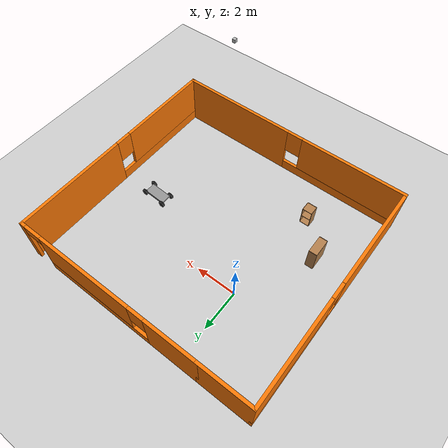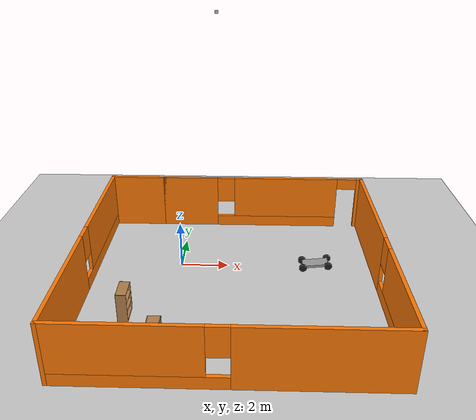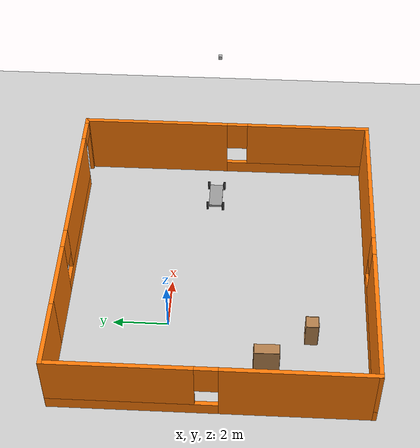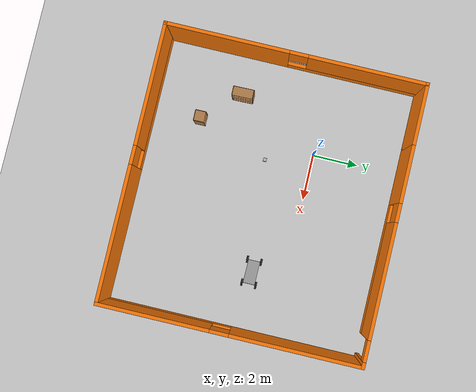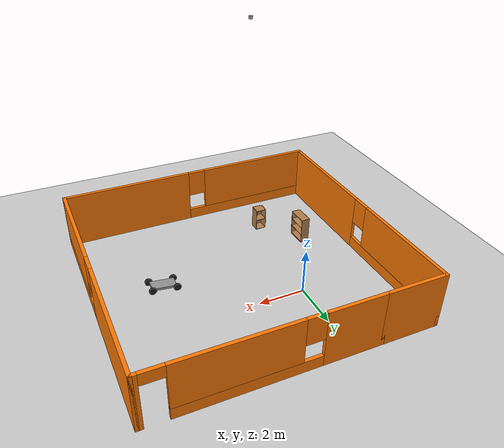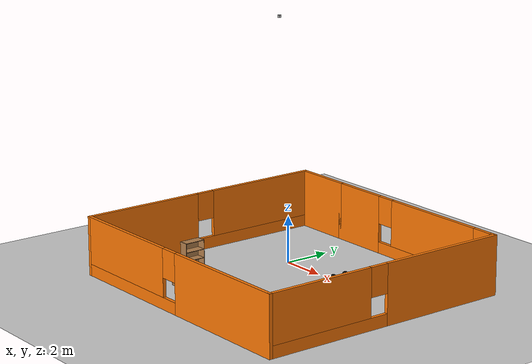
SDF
<sdf version="1.6">
 <world name="default">
  <model name="ground_plane">
   <static>1</static>
   <link name="link">
    <collision name="collision">
     <geometry><plane><normal>0 0 1</normal><size>100 100</size></plane></geometry>
     <surface><friction><ode><mu>100</mu><mu2>50</mu2></ode></friction></surface>
    </collision>
    <visual name="visual">
     <cast_shadows>0</cast_shadows>
     <geometry><plane><normal>0 0 1</normal><size>100 100</size></plane></geometry>
     <material>
      <script><uri>file://media/materials/scripts/gazebo.material</uri><name>Gazebo/Grey</name></script>
     </material>
    </visual>
   </link>
  </model>
  <model name="bookshelf">
   <static>1</static>
   <link name="link">
    <inertial><mass>1</mass></inertial>
    <collision name="back">
     <pose>0 0.005 0.6 0 -0 0</pose>
     <geometry><box><size>0.9 0.01 1.2</size></box></geometry>
    </collision>
    <visual name="visual1">
     <pose>0 0.005 0.6 0 -0 0</pose>
     <geometry><box><size>0.9 0.01 1.2</size></box></geometry>
     <material>
      <script><uri>file://media/materials/scripts/gazebo.material</uri><name>Gazebo/Wood</name></script>
     </material>
    </visual>
    <collision name="left_side">
     <pose>0.45 -0.195 0.6 0 -0 0</pose>
     <geometry><box><size>0.02 0.4 1.2</size></box></geometry>
    </collision>
    <visual name="visual2">
     <pose>0.45 -0.195 0.6 0 -0 0</pose>
     <geometry><box><size>0.02 0.4 1.2</size></box></geometry>
     <material>
      <script><uri>file://media/materials/scripts/gazebo.material</uri><name>Gazebo/Wood</name></script>
     </material>
    </visual>
    <collision name="right_side">
     <pose>-0.45 -0.195 0.6 0 -0 0</pose>
     <geometry><box><size>0.02 0.4 1.2</size></box></geometry>
    </collision>
    <visual name="visual3">
     <pose>-0.45 -0.195 0.6 0 -0 0</pose>
     <geometry><box><size>0.02 0.4 1.2</size></box></geometry>
     <material>
      <script><uri>file://media/materials/scripts/gazebo.material</uri><name>Gazebo/Wood</name></script>
     </material>
    </visual>
    <collision name="bottom">
     <pose>0 -0.195 0.03 0 -0 0</pose>
     <geometry><box><size>0.88 0.4 0.06</size></box></geometry>
    </collision>
    <visual name="visual4">
     <pose>0 -0.195 0.03 0 -0 0</pose>
     <geometry><box><size>0.88 0.4 0.06</size></box></geometry>
     <material>
      <script><uri>file://media/materials/scripts/gazebo.material</uri><name>Gazebo/Wood</name></script>
     </material>
    </visual>
    <collision name="top">
     <pose>0 -0.195 1.19 0 -0 0</pose>
     <geometry><box><size>0.88 0.4 0.02</size></box></geometry>
    </collision>
    <visual name="visual5">
     <pose>0 -0.195 1.19 0 -0 0</pose>
     <geometry><box><size>0.88 0.4 0.02</size></box></geometry>
     <material>
      <script><uri>file://media/materials/scripts/gazebo.material</uri><name>Gazebo/Wood</name></script>
     </material>
    </visual>
    <collision name="low_shelf">
     <pose>0 -0.195 0.43 0 -0 0</pose>
     <geometry><box><size>0.88 0.4 0.02</size></box></geometry>
    </collision>
    <visual name="visual6">
     <pose>0 -0.195 0.43 0 -0 0</pose>
     <geometry><box><size>0.88 0.4 0.02</size></box></geometry>
     <material>
      <script><uri>file://media/materials/scripts/gazebo.material</uri><name>Gazebo/Wood</name></script>
     </material>
    </visual>
    <collision name="high_shelf">
     <pose>0 -0.195 0.8 0 -0 0</pose>
     <geometry><box><size>0.88 0.4 0.02</size></box></geometry>
    </collision>
    <visual name="visual7">
     <pose>0 -0.195 0.8 0 -0 0</pose>
     <geometry><box><size>0.88 0.4 0.02</size></box></geometry>
     <material>
      <script><uri>file://media/materials/scripts/gazebo.material</uri><name>Gazebo/Wood</name></script>
     </material>
    </visual>
   </link>
   <pose>-1.99947 -3.58684 0 0 -0 1.58787</pose>
  </model>
  <model name="cabinet">
   <static>1</static>
   <link name="cabinet_bottom_plate">
    <inertial>
     <pose>0 0 -1 0 -0 0</pose>
     <inertia><ixx>2.05</ixx><ixy>0</ixy><ixz>0</ixz><iyy>2.05</iyy><iyz>0</iyz><izz>2.05</izz></inertia>
     <mass>25</mass>
    </inertial>
    <collision name="cabinet_bottom_plate_geom">
     <pose>0 0 0.01 0 -0 0</pose>
     <geometry><box><size>0.45 0.45 0.02</size></box></geometry>
    </collision>
    <visual name="cabinet_bottom_plate_geom_visual">
     <pose>0 0 0.01 0 -0 0</pose>
     <geometry><box><size>0.45 0.45 0.02</size></box></geometry>
     <material>
      <script><uri>file://media/materials/scripts/gazebo.material</uri><name>Gazebo/Wood</name></script>
     </material>
    </visual>
    <collision name="cabinet_bottom_plate_geom_cabinet_back_plate">
     <pose>0.235 0 0.51 0 -0 0</pose>
     <geometry><box><size>0.02 0.45 1.02</size></box></geometry>
    </collision>
    <visual name="cabinet_bottom_plate_geom_cabinet_back_plate_visual">
     <pose>0.235 0 0.51 0 -0 0</pose>
     <geometry><box><size>0.02 0.45 1.02</size></box></geometry>
     <material>
      <script><uri>file://media/materials/scripts/gazebo.material</uri><name>Gazebo/Wood</name></script>
     </material>
    </visual>
    <collision name="cabinet_bottom_plate_geom_cabinet_left_plate">
     <pose>0 0.235 0.51 0 -0 0</pose>
     <geometry><box><size>0.45 0.02 1.02</size></box></geometry>
    </collision>
    <visual name="cabinet_bottom_plate_geom_cabinet_left_plate_visual">
     <pose>0 0.235 0.51 0 -0 0</pose>
     <geometry><box><size>0.45 0.02 1.02</size></box></geometry>
     <material>
      <script><uri>file://media/materials/scripts/gazebo.material</uri><name>Gazebo/Wood</name></script>
     </material>
    </visual>
    <collision name="cabinet_bottom_plate_geom_cabinet_middle_plate">
     <pose>0 0 0.51 0 -0 0</pose>
     <geometry><box><size>0.45 0.45 0.02</size></box></geometry>
    </collision>
    <visual name="cabinet_bottom_plate_geom_cabinet_middle_plate_visual">
     <pose>0 0 0.51 0 -0 0</pose>
     <geometry><box><size>0.45 0.45 0.02</size></box></geometry>
     <material>
      <script><uri>file://media/materials/scripts/gazebo.material</uri><name>Gazebo/Wood</name></script>
     </material>
    </visual>
    <collision name="cabinet_bottom_plate_geom_cabinet_right_plate">
     <pose>0 -0.235 0.51 0 -0 0</pose>
     <geometry><box><size>0.45 0.02 1.02</size></box></geometry>
    </collision>
    <visual name="cabinet_bottom_plate_geom_cabinet_right_plate_visual">
     <pose>0 -0.235 0.51 0 -0 0</pose>
     <geometry><box><size>0.45 0.02 1.02</size></box></geometry>
     <material>
      <script><uri>file://media/materials/scripts/gazebo.material</uri><name>Gazebo/Wood</name></script>
     </material>
    </visual>
    <collision name="cabinet_bottom_plate_geom_cabinet_top_plate">
     <pose>0 0 1.01 0 -0 0</pose>
     <geometry><box><size>0.45 0.45 0.02</size></box></geometry>
    </collision>
    <visual name="cabinet_bottom_plate_geom_cabinet_top_plate_visual">
     <pose>0 0 1.01 0 -0 0</pose>
     <geometry><box><size>0.45 0.45 0.02</size></box></geometry>
     <material>
      <script><uri>file://media/materials/scripts/gazebo.material</uri><name>Gazebo/Wood</name></script>
     </material>
    </visual>
   </link>
   <pose>-0.418469 -5.16674 0 0 0 -1.56404</pose>
  </model>
  <model name="cart_rigid_suspension">
   <link name="chassis">
    <pose>0 0 0.15 0 -0 0</pose>
    <inertial>
     <pose>0.1 0 0 0 -0 0</pose>
     <mass>10</mass>
     <inertia>
      <ixx>0.216667</ixx>
      <iyy>0.841667</iyy>
      <izz>1.04167</izz>
      <ixy>0</ixy>
      <ixz>0</ixz>
      <iyz>0</iyz>
     </inertia>
    </inertial>
    <collision name="collision"><geometry><box><size>1 0.5 0.1</size></box></geometry></collision>
    <visual name="visual">
     <geometry><box><size>1 0.5 0.1</size></box></geometry>
     <material>
      <script><uri>file://media/materials/scripts/gazebo.material</uri><name>Gazebo/Grey</name></script>
     </material>
    </visual>
   </link>
   <link name="wheel_front_left">
    <pose>0.5 0.298 0.15 -1.5708 0 0</pose>
    <inertial>
     <mass>0.5</mass>
     <inertia>
      <ixx>0.00307917</ixx>
      <iyy>0.00307917</iyy>
      <izz>0.005625</izz>
      <ixy>0</ixy>
      <ixz>0</ixz>
      <iyz>0</iyz>
     </inertia>
    </inertial>
    <collision name="collision">
     <geometry><cylinder><radius>0.15</radius><length>0.08</length></cylinder></geometry>
    </collision>
    <visual name="visual">
     <geometry><cylinder><radius>0.15</radius><length>0.08</length></cylinder></geometry>
     <material>
      <script><uri>file://media/materials/scripts/gazebo.material</uri><name>Gazebo/Black</name></script>
     </material>
    </visual>
   </link>
   <joint name="wheel_front_left_spin" type="revolute">
    <parent>chassis</parent>
    <child>wheel_front_left</child>
    <axis>
     <xyz>0 0 1</xyz>
     <use_parent_model_frame>0</use_parent_model_frame>
     <limit><lower>-1e+16</lower><upper>1e+16</upper></limit>
     <dynamics><spring_reference>0</spring_reference><spring_stiffness>0</spring_stiffness></dynamics>
    </axis>
   </joint>
   <link name="wheel_front_right">
    <pose>0.5 -0.298 0.15 -1.5708 0 0</pose>
    <inertial>
     <mass>0.5</mass>
     <inertia>
      <ixx>0.00307917</ixx>
      <iyy>0.00307917</iyy>
      <izz>0.005625</izz>
      <ixy>0</ixy>
      <ixz>0</ixz>
      <iyz>0</iyz>
     </inertia>
    </inertial>
    <collision name="collision">
     <geometry><cylinder><radius>0.15</radius><length>0.08</length></cylinder></geometry>
    </collision>
    <visual name="visual">
     <geometry><cylinder><radius>0.15</radius><length>0.08</length></cylinder></geometry>
     <material>
      <script><uri>file://media/materials/scripts/gazebo.material</uri><name>Gazebo/Black</name></script>
     </material>
    </visual>
   </link>
   <joint name="wheel_front_right_spin" type="revolute">
    <parent>chassis</parent>
    <child>wheel_front_right</child>
    <axis>
     <xyz>0 0 1</xyz>
     <use_parent_model_frame>0</use_parent_model_frame>
     <limit><lower>-1e+16</lower><upper>1e+16</upper></limit>
     <dynamics><spring_reference>0</spring_reference><spring_stiffness>0</spring_stiffness></dynamics>
    </axis>
   </joint>
   <link name="wheel_rear_left">
    <pose>-0.5 0.298 0.15 -1.5708 0 0</pose>
    <inertial>
     <mass>0.5</mass>
     <inertia>
      <ixx>0.00307917</ixx>
      <iyy>0.00307917</iyy>
      <izz>0.005625</izz>
      <ixy>0</ixy>
      <ixz>0</ixz>
      <iyz>0</iyz>
     </inertia>
    </inertial>
    <collision name="collision">
     <geometry><cylinder><radius>0.15</radius><length>0.08</length></cylinder></geometry>
    </collision>
    <visual name="visual">
     <geometry><cylinder><radius>0.15</radius><length>0.08</length></cylinder></geometry>
     <material>
      <script><uri>file://media/materials/scripts/gazebo.material</uri><name>Gazebo/Black</name></script>
     </material>
    </visual>
   </link>
   <joint name="wheel_rear_left_spin" type="revolute">
    <parent>chassis</parent>
    <child>wheel_rear_left</child>
    <axis>
     <xyz>0 0 1</xyz>
     <use_parent_model_frame>0</use_parent_model_frame>
     <limit><lower>-1e+16</lower><upper>1e+16</upper></limit>
     <dynamics><spring_reference>0</spring_reference><spring_stiffness>0</spring_stiffness></dynamics>
    </axis>
   </joint>
   <link name="wheel_rear_right">
    <pose>-0.5 -0.298 0.15 -1.5708 0 0</pose>
    <inertial>
     <mass>0.5</mass>
     <inertia>
      <ixx>0.00307917</ixx>
      <iyy>0.00307917</iyy>
      <izz>0.005625</izz>
      <ixy>0</ixy>
      <ixz>0</ixz>
      <iyz>0</iyz>
     </inertia>
    </inertial>
    <collision name="collision">
     <geometry><cylinder><radius>0.15</radius><length>0.08</length></cylinder></geometry>
    </collision>
    <visual name="visual">
     <geometry><cylinder><radius>0.15</radius><length>0.08</length></cylinder></geometry>
     <material>
      <script><uri>file://media/materials/scripts/gazebo.material</uri><name>Gazebo/Black</name></script>
     </material>
    </visual>
   </link>
   <joint name="wheel_rear_right_spin" type="revolute">
    <parent>chassis</parent>
    <child>wheel_rear_right</child>
    <axis>
     <xyz>0 0 1</xyz>
     <use_parent_model_frame>0</use_parent_model_frame>
     <limit><lower>-1e+16</lower><upper>1e+16</upper></limit>
     <dynamics><spring_reference>0</spring_reference><spring_stiffness>0</spring_stiffness></dynamics>
    </axis>
   </joint>
   <pose>5.58422 -1.45246 0.954144 -3.9e-05 -0.107772 -0.006007</pose>
  </model>
  <model name="lidarwall">
   <pose>2.26726 -1.73259 0 0 -0 0</pose>
   <link name="Wall_10">
    <collision name="Wall_10_Collision">
     <geometry><box><size>2.65 0.15 2.5</size></box></geometry>
     <pose>0 0 1.25 0 -0 0</pose>
    </collision>
    <visual name="Wall_10_Visual">
     <pose>0 0 1.25 0 -0 0</pose>
     <geometry><box><size>2.65 0.15 2.5</size></box></geometry>
     <material>
      <script><uri>file://media/materials/scripts/gazebo.material</uri><name>Gazebo/Grey</name></script>
      <ambient>0.996078 0.47451 0.0196078 1</ambient>
     </material>
    </visual>
    <pose>-4.675 5.55 0 0 -0 0</pose>
   </link>
   <link name="Wall_6">
    <pose>1.25 5.55 0 0 -0 0</pose>
    <visual name="Wall_6_Visual_0">
     <pose>-3.44551 0 1.25 0 -0 0</pose>
     <geometry><box><size>2.60897 0.15 2.5</size></box></geometry>
     <material>
      <script><uri>file://media/materials/scripts/gazebo.material</uri><name>Gazebo/Grey</name></script>
      <ambient>0.996078 0.47451 0.0196078 1</ambient>
     </material>
    </visual>
    <collision name="Wall_6_Collision_0">
     <geometry><box><size>2.60897 0.15 2.5</size></box></geometry>
     <pose>-3.44551 0 1.25 0 -0 0</pose>
    </collision>
    <visual name="Wall_6_Visual_1">
     <pose>4.60231 0 1.25 0 -0 0</pose>
     <geometry><box><size>0.295388 0.15 2.5</size></box></geometry>
     <material>
      <script><uri>file://media/materials/scripts/gazebo.material</uri><name>Gazebo/Grey</name></script>
      <ambient>0.996078 0.47451 0.0196078 1</ambient>
     </material>
    </visual>
    <collision name="Wall_6_Collision_1">
     <geometry><box><size>0.295388 0.15 2.5</size></box></geometry>
     <pose>4.60231 0 1.25 0 -0 0</pose>
    </collision>
    <visual name="Wall_6_Visual_2">
     <pose>0.706791 0 0.25 0 -0 0</pose>
     <geometry><box><size>5.69564 0.15 0.5</size></box></geometry>
     <material>
      <script><uri>file://media/materials/scripts/gazebo.material</uri><name>Gazebo/Grey</name></script>
      <ambient>0.996078 0.47451 0.0196078 1</ambient>
     </material>
    </visual>
    <collision name="Wall_6_Collision_2">
     <geometry><box><size>5.69564 0.15 0.5</size></box></geometry>
     <pose>0.706791 0 0.25 0 -0 0</pose>
    </collision>
    <visual name="Wall_6_Visual_3">
     <pose>1.10679 0 1.5 0 -0 0</pose>
     <geometry><box><size>4.89564 0.15 2</size></box></geometry>
     <material>
      <script><uri>file://media/materials/scripts/gazebo.material</uri><name>Gazebo/Grey</name></script>
      <ambient>0.996078 0.47451 0.0196078 1</ambient>
     </material>
    </visual>
    <collision name="Wall_6_Collision_3">
     <geometry><box><size>4.89564 0.15 2</size></box></geometry>
     <pose>1.10679 0 1.5 0 -0 0</pose>
    </collision>
    <visual name="Wall_6_Visual_4">
     <pose>-1.74103 0 1.9 0 -0 0</pose>
     <geometry><box><size>0.8 0.15 1.2</size></box></geometry>
     <material>
      <script><uri>file://media/materials/scripts/gazebo.material</uri><name>Gazebo/Grey</name></script>
      <ambient>0.996078 0.47451 0.0196078 1</ambient>
     </material>
    </visual>
    <collision name="Wall_6_Collision_4">
     <geometry><box><size>0.8 0.15 1.2</size></box></geometry>
     <pose>-1.74103 0 1.9 0 -0 0</pose>
    </collision>
    <visual name="Wall_6_Visual_5">
     <pose>4.00461 0 2.25 0 -0 0</pose>
     <geometry><box><size>0.9 0.15 0.5</size></box></geometry>
     <material>
      <script><uri>file://media/materials/scripts/gazebo.material</uri><name>Gazebo/Grey</name></script>
      <ambient>0.996078 0.47451 0.0196078 1</ambient>
     </material>
    </visual>
    <collision name="Wall_6_Collision_5">
     <geometry><box><size>0.9 0.15 0.5</size></box></geometry>
     <pose>4.00461 0 2.25 0 -0 0</pose>
    </collision>
   </link>
   <link name="Wall_7">
    <pose>5.925 0 0 0 0 -1.5708</pose>
    <visual name="Wall_7_Visual_0">
     <pose>-2.79573 0 1.25 0 -0 0</pose>
     <geometry><box><size>5.65854 0.15 2.5</size></box></geometry>
     <material>
      <script><uri>file://media/materials/scripts/gazebo.material</uri><name>Gazebo/Grey</name></script>
      <ambient>0.996078 0.47451 0.0196078 1</ambient>
     </material>
    </visual>
    <collision name="Wall_7_Collision_0">
     <geometry><box><size>5.65854 0.15 2.5</size></box></geometry>
     <pose>-2.79573 0 1.25 0 -0 0</pose>
    </collision>
    <visual name="Wall_7_Visual_1">
     <pose>2.82927 0 0.25 0 -0 0</pose>
     <geometry><box><size>5.59146 0.15 0.5</size></box></geometry>
     <material>
      <script><uri>file://media/materials/scripts/gazebo.material</uri><name>Gazebo/Grey</name></script>
      <ambient>0.996078 0.47451 0.0196078 1</ambient>
     </material>
    </visual>
    <collision name="Wall_7_Collision_1">
     <geometry><box><size>5.59146 0.15 0.5</size></box></geometry>
     <pose>2.82927 0 0.25 0 -0 0</pose>
    </collision>
    <visual name="Wall_7_Visual_2">
     <pose>3.22927 0 1.5 0 -0 0</pose>
     <geometry><box><size>4.79146 0.15 2</size></box></geometry>
     <material>
      <script><uri>file://media/materials/scripts/gazebo.material</uri><name>Gazebo/Grey</name></script>
      <ambient>0.996078 0.47451 0.0196078 1</ambient>
     </material>
    </visual>
    <collision name="Wall_7_Collision_2">
     <geometry><box><size>4.79146 0.15 2</size></box></geometry>
     <pose>3.22927 0 1.5 0 -0 0</pose>
    </collision>
    <visual name="Wall_7_Visual_3">
     <pose>0.433542 0 1.9 0 -0 0</pose>
     <geometry><box><size>0.8 0.15 1.2</size></box></geometry>
     <material>
      <script><uri>file://media/materials/scripts/gazebo.material</uri><name>Gazebo/Grey</name></script>
      <ambient>0.996078 0.47451 0.0196078 1</ambient>
     </material>
    </visual>
    <collision name="Wall_7_Collision_3">
     <geometry><box><size>0.8 0.15 1.2</size></box></geometry>
     <pose>0.433542 0 1.9 0 -0 0</pose>
    </collision>
   </link>
   <link name="Wall_8">
    <pose>0 -5.55 0 0 -0 3.14159</pose>
    <visual name="Wall_8_Visual_0">
     <pose>-3.04904 0 1.25 0 -0 0</pose>
     <geometry><box><size>5.90193 0.15 2.5</size></box></geometry>
     <material>
      <script><uri>file://media/materials/scripts/gazebo.material</uri><name>Gazebo/Grey</name></script>
      <ambient>0.996078 0.47451 0.0196078 1</ambient>
     </material>
    </visual>
    <collision name="Wall_8_Collision_0">
     <geometry><box><size>5.90193 0.15 2.5</size></box></geometry>
     <pose>-3.04904 0 1.25 0 -0 0</pose>
    </collision>
    <visual name="Wall_8_Visual_1">
     <pose>2.95096 0 0.25 0 -0 0</pose>
     <geometry><box><size>6.09807 0.15 0.5</size></box></geometry>
     <material>
      <script><uri>file://media/materials/scripts/gazebo.material</uri><name>Gazebo/Grey</name></script>
      <ambient>0.996078 0.47451 0.0196078 1</ambient>
     </material>
    </visual>
    <collision name="Wall_8_Collision_1">
     <geometry><box><size>6.09807 0.15 0.5</size></box></geometry>
     <pose>2.95096 0 0.25 0 -0 0</pose>
    </collision>
    <visual name="Wall_8_Visual_2">
     <pose>3.35096 0 1.5 0 -0 0</pose>
     <geometry><box><size>5.29807 0.15 2</size></box></geometry>
     <material>
      <script><uri>file://media/materials/scripts/gazebo.material</uri><name>Gazebo/Grey</name></script>
      <ambient>0.996078 0.47451 0.0196078 1</ambient>
     </material>
    </visual>
    <collision name="Wall_8_Collision_2">
     <geometry><box><size>5.29807 0.15 2</size></box></geometry>
     <pose>3.35096 0 1.5 0 -0 0</pose>
    </collision>
    <visual name="Wall_8_Visual_3">
     <pose>0.301925 0 1.9 0 -0 0</pose>
     <geometry><box><size>0.8 0.15 1.2</size></box></geometry>
     <material>
      <script><uri>file://media/materials/scripts/gazebo.material</uri><name>Gazebo/Grey</name></script>
      <ambient>0.996078 0.47451 0.0196078 1</ambient>
     </material>
    </visual>
    <collision name="Wall_8_Collision_3">
     <geometry><box><size>0.8 0.15 1.2</size></box></geometry>
     <pose>0.301925 0 1.9 0 -0 0</pose>
    </collision>
   </link>
   <link name="Wall_9">
    <pose>-5.925 0 0 0 -0 1.5708</pose>
    <visual name="Wall_9_Visual_0">
     <pose>-2.9491 0 1.25 0 -0 0</pose>
     <geometry><box><size>5.3518 0.15 2.5</size></box></geometry>
     <material>
      <script><uri>file://media/materials/scripts/gazebo.material</uri><name>Gazebo/Grey</name></script>
      <ambient>0.996078 0.47451 0.0196078 1</ambient>
     </material>
    </visual>
    <collision name="Wall_9_Collision_0">
     <geometry><box><size>5.3518 0.15 2.5</size></box></geometry>
     <pose>-2.9491 0 1.25 0 -0 0</pose>
    </collision>
    <visual name="Wall_9_Visual_1">
     <pose>2.6759 0 0.25 0 -0 0</pose>
     <geometry><box><size>5.8982 0.15 0.5</size></box></geometry>
     <material>
      <script><uri>file://media/materials/scripts/gazebo.material</uri><name>Gazebo/Grey</name></script>
      <ambient>0.996078 0.47451 0.0196078 1</ambient>
     </material>
    </visual>
    <collision name="Wall_9_Collision_1">
     <geometry><box><size>5.8982 0.15 0.5</size></box></geometry>
     <pose>2.6759 0 0.25 0 -0 0</pose>
    </collision>
    <visual name="Wall_9_Visual_2">
     <pose>3.0759 0 1.5 0 -0 0</pose>
     <geometry><box><size>5.09819 0.15 2</size></box></geometry>
     <material>
      <script><uri>file://media/materials/scripts/gazebo.material</uri><name>Gazebo/Grey</name></script>
      <ambient>0.996078 0.47451 0.0196078 1</ambient>
     </material>
    </visual>
    <collision name="Wall_9_Collision_2">
     <geometry><box><size>5.09819 0.15 2</size></box></geometry>
     <pose>3.0759 0 1.5 0 -0 0</pose>
    </collision>
    <visual name="Wall_9_Visual_3">
     <pose>0.126805 0 1.9 0 -0 0</pose>
     <geometry><box><size>0.8 0.15 1.2</size></box></geometry>
     <material>
      <script><uri>file://media/materials/scripts/gazebo.material</uri><name>Gazebo/Grey</name></script>
      <ambient>0.996078 0.47451 0.0196078 1</ambient>
     </material>
    </visual>
    <collision name="Wall_9_Collision_3">
     <geometry><box><size>0.8 0.15 1.2</size></box></geometry>
     <pose>0.126805 0 1.9 0 -0 0</pose>
    </collision>
   </link>
   <static>1</static>
  </model>
  <model name="camera">
   <link name="link">
    <gravity>0</gravity>
    <pose>0.05 0.05 0.05 0 -0 0</pose>
    <inertial>
     <mass>0.1</mass>
     <inertia><ixx>1</ixx><ixy>0</ixy><ixz>0</ixz><iyy>1</iyy><iyz>0</iyz><izz>1</izz></inertia>
    </inertial>
    <visual name="visual"><geometry><box><size>0.1 0.1 0.1</size></box></geometry></visual>
    <sensor name="camera" type="camera">
     <camera name="__default__">
      <horizontal_fov>1.047</horizontal_fov>
      <image><width>320</width><height>240</height></image>
      <clip><near>0.1</near><far>100</far></clip>
     </camera>
     <always_on>1</always_on>
     <update_rate>30</update_rate>
     <visualize>1</visualize>
    </sensor>
   </link>
   <pose>1.68284 -1.85354 10.9095 0 1.55348 0</pose>
  </model>
 </world>
</sdf>
